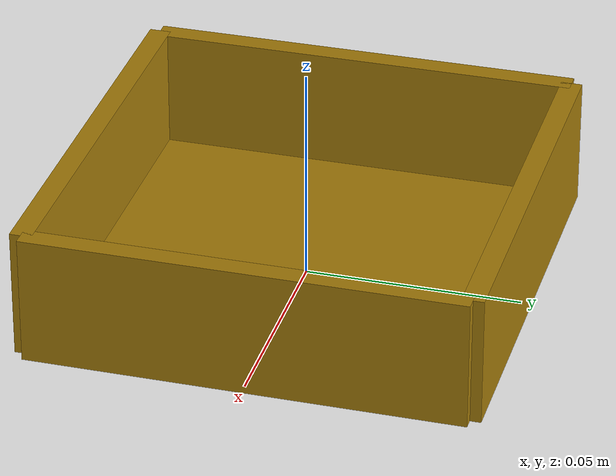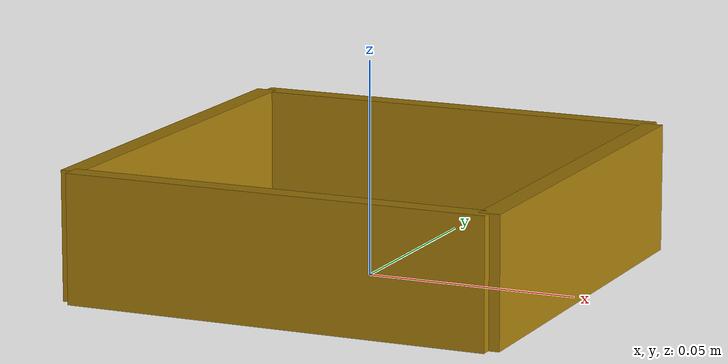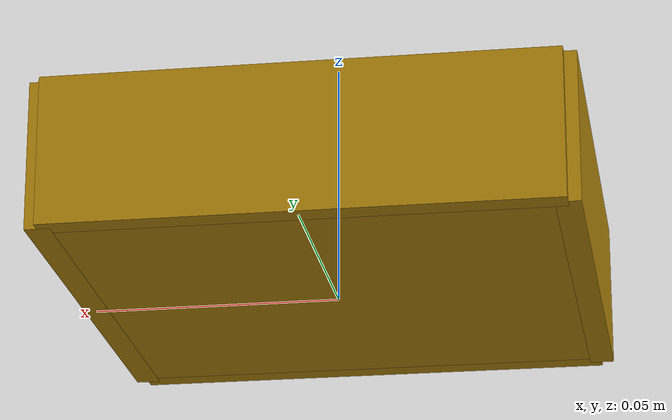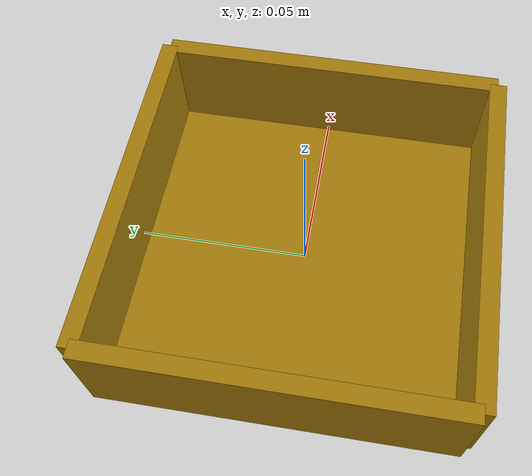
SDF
<?xml version="1.0"?>
<sdf version="1.9">
  <model name="bac_jaune">
    <static>true</static>
    <link name="corps">
      <collision name="fond_collision">
        <pose>0.000000 0.000000 0.001000 0 0 0</pose>
        <geometry><box><size>0.095000 0.095000 0.002000</size></box></geometry>
      </collision>
      <visual name="fond">
        <pose>0.000000 0.000000 0.001000 0 0 0</pose>
        <geometry><box><size>0.095000 0.095000 0.002000</size></box></geometry>
        <material>
          <ambient>0.647 0.486 0.039 1</ambient>
          <diffuse>0.647 0.486 0.039 1</diffuse>
          <specular>0.1 0.1 0.1 1</specular>
        </material>
      </visual>
      <collision name="paroi_x_plus_collision">
        <pose>0.050000 0.000000 0.015000 0 0 0</pose>
        <geometry><box><size>0.005000 0.100000 0.030000</size></box></geometry>
      </collision>
      <visual name="paroi_x_plus">
        <pose>0.050000 0.000000 0.015000 0 0 0</pose>
        <geometry><box><size>0.005000 0.100000 0.030000</size></box></geometry>
        <material>
          <ambient>0.647 0.486 0.039 1</ambient>
          <diffuse>0.647 0.486 0.039 1</diffuse>
          <specular>0.1 0.1 0.1 1</specular>
        </material>
      </visual>
      <collision name="paroi_x_moins_collision">
        <pose>-0.050000 0.000000 0.015000 0 0 0</pose>
        <geometry><box><size>0.005000 0.100000 0.030000</size></box></geometry>
      </collision>
      <visual name="paroi_x_moins">
        <pose>-0.050000 0.000000 0.015000 0 0 0</pose>
        <geometry><box><size>0.005000 0.100000 0.030000</size></box></geometry>
        <material>
          <ambient>0.647 0.486 0.039 1</ambient>
          <diffuse>0.647 0.486 0.039 1</diffuse>
          <specular>0.1 0.1 0.1 1</specular>
        </material>
      </visual>
      <collision name="paroi_y_plus_collision">
        <pose>0.000000 0.050000 0.015000 0 0 0</pose>
        <geometry><box><size>0.100000 0.005000 0.030000</size></box></geometry>
      </collision>
      <visual name="paroi_y_plus">
        <pose>0.000000 0.050000 0.015000 0 0 0</pose>
        <geometry><box><size>0.100000 0.005000 0.030000</size></box></geometry>
        <material>
          <ambient>0.647 0.486 0.039 1</ambient>
          <diffuse>0.647 0.486 0.039 1</diffuse>
          <specular>0.1 0.1 0.1 1</specular>
        </material>
      </visual>
      <collision name="paroi_y_moins_collision">
        <pose>0.000000 -0.050000 0.015000 0 0 0</pose>
        <geometry><box><size>0.100000 0.005000 0.030000</size></box></geometry>
      </collision>
      <visual name="paroi_y_moins">
        <pose>0.000000 -0.050000 0.015000 0 0 0</pose>
        <geometry><box><size>0.100000 0.005000 0.030000</size></box></geometry>
        <material>
          <ambient>0.647 0.486 0.039 1</ambient>
          <diffuse>0.647 0.486 0.039 1</diffuse>
          <specular>0.1 0.1 0.1 1</specular>
        </material>
      </visual>
    </link>
  </model>
</sdf>
